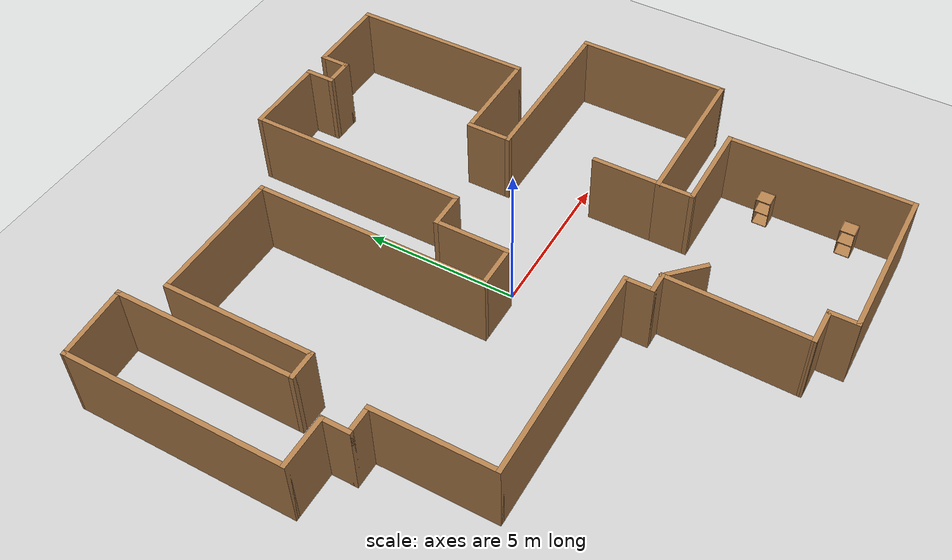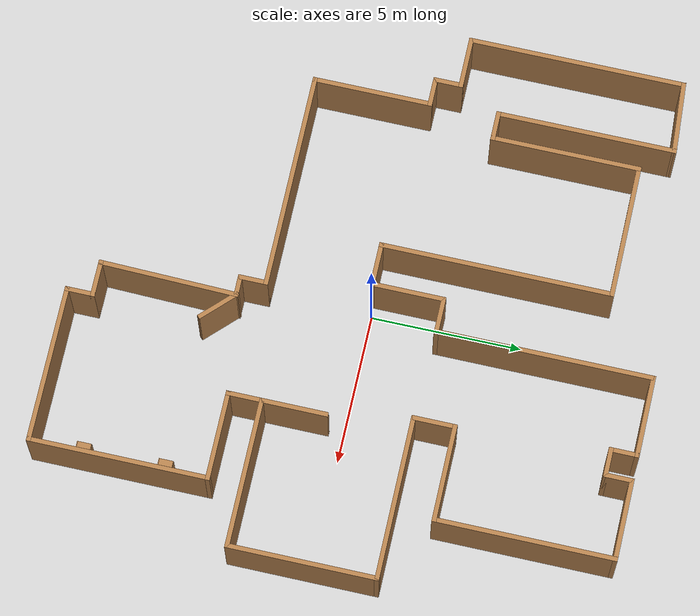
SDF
<sdf version="1.6">
 <world name="default">
  <model name="ground_plane">
   <static>1</static>
   <link name="link">
    <collision name="collision">
     <geometry><plane><normal>0 0 1</normal><size>100 100</size></plane></geometry>
     <surface>
      <contact><collide_bitmask>65535</collide_bitmask></contact>
      <friction><ode><mu>100</mu><mu2>50</mu2></ode></friction>
     </surface>
    </collision>
    <visual name="visual">
     <cast_shadows>0</cast_shadows>
     <geometry><plane><normal>0 0 1</normal><size>100 100</size></plane></geometry>
     <material>
      <script><uri>file://media/materials/scripts/gazebo.material</uri><name>Gazebo/Grey</name></script>
     </material>
    </visual>
   </link>
  </model>
  <model name="map_120">
   <pose>-0.132946 -0.11473 0 0 -0 0</pose>
   <link name="Wall_12">
    <collision name="Wall_12_Collision">
     <geometry><box><size>1.25 0.15 2.5</size></box></geometry>
     <pose>0 0 1.25 0 -0 0</pose>
    </collision>
    <visual name="Wall_12_Visual">
     <pose>0 0 1.25 0 -0 0</pose>
     <geometry><box><size>1.25 0.15 2.5</size></box></geometry>
     <material>
      <script><uri>file://media/materials/scripts/gazebo.material</uri><name>Gazebo/Wood</name></script>
      <ambient>1 1 1 1</ambient>
     </material>
     <meta><layer>0</layer></meta>
    </visual>
    <pose>1.47736 -8.65 0 0 -0 0</pose>
   </link>
   <link name="Wall_13">
    <collision name="Wall_13_Collision">
     <geometry><box><size>1 0.15 2.5</size></box></geometry>
     <pose>0 0 1.25 0 -0 0</pose>
    </collision>
    <visual name="Wall_13_Visual">
     <pose>0 0 1.25 0 -0 0</pose>
     <geometry><box><size>1 0.15 2.5</size></box></geometry>
     <material>
      <script><uri>file://media/materials/scripts/gazebo.material</uri><name>Gazebo/Wood</name></script>
      <ambient>1 1 1 1</ambient>
     </material>
     <meta><layer>0</layer></meta>
    </visual>
    <pose>2.02736 -9.075 0 0 -0 -1.5708</pose>
   </link>
   <link name="Wall_14">
    <collision name="Wall_14_Collision">
     <geometry><box><size>5.25 0.15 2.5</size></box></geometry>
     <pose>0 0 1.25 0 -0 0</pose>
    </collision>
    <visual name="Wall_14_Visual">
     <pose>0 0 1.25 0 -0 0</pose>
     <geometry><box><size>5.25 0.15 2.5</size></box></geometry>
     <material>
      <script><uri>file://media/materials/scripts/gazebo.material</uri><name>Gazebo/Wood</name></script>
      <ambient>1 1 1 1</ambient>
     </material>
     <meta><layer>0</layer></meta>
    </visual>
    <pose>4.57736 -9.5 0 0 -0 0</pose>
   </link>
   <link name="Wall_15">
    <collision name="Wall_15_Collision">
     <geometry><box><size>6 0.15 2.5</size></box></geometry>
     <pose>0 0 1.25 0 -0 0</pose>
    </collision>
    <visual name="Wall_15_Visual">
     <pose>0 0 1.25 0 -0 0</pose>
     <geometry><box><size>6 0.15 2.5</size></box></geometry>
     <material>
      <script><uri>file://media/materials/scripts/gazebo.material</uri><name>Gazebo/Wood</name></script>
      <ambient>1 1 1 1</ambient>
     </material>
     <meta><layer>0</layer></meta>
    </visual>
    <pose>7.12736 -6.575 0 0 -0 1.5708</pose>
   </link>
   <link name="Wall_16">
    <collision name="Wall_16_Collision">
     <geometry><box><size>3 0.15 2.5</size></box></geometry>
     <pose>0 0 1.25 0 -0 0</pose>
    </collision>
    <visual name="Wall_16_Visual">
     <pose>0 0 1.25 0 -0 0</pose>
     <geometry><box><size>3 0.15 2.5</size></box></geometry>
     <material>
      <script><uri>file://media/materials/scripts/gazebo.material</uri><name>Gazebo/Wood</name></script>
      <ambient>1 1 1 1</ambient>
     </material>
     <meta><layer>0</layer></meta>
    </visual>
    <pose>5.70236 -3.65 0 0 -0 3.14159</pose>
   </link>
   <link name="Wall_17">
    <collision name="Wall_17_Collision">
     <geometry><box><size>1.25 0.15 2.5</size></box></geometry>
     <pose>0 0 1.25 0 -0 0</pose>
    </collision>
    <visual name="Wall_17_Visual">
     <pose>0 0 1.25 0 -0 0</pose>
     <geometry><box><size>1.25 0.15 2.5</size></box></geometry>
     <material>
      <script><uri>file://media/materials/scripts/gazebo.material</uri><name>Gazebo/Wood</name></script>
      <ambient>1 1 1 1</ambient>
     </material>
     <meta><layer>0</layer></meta>
    </visual>
    <pose>4.27736 -3.1 0 0 -0 1.5708</pose>
   </link>
   <link name="Wall_18">
    <collision name="Wall_18_Collision">
     <geometry><box><size>5 0.15 2.5</size></box></geometry>
     <pose>0 0 1.25 0 -0 0</pose>
    </collision>
    <visual name="Wall_18_Visual">
     <pose>0 0 1.25 0 -0 0</pose>
     <geometry><box><size>5 0.15 2.5</size></box></geometry>
     <material>
      <script><uri>file://media/materials/scripts/gazebo.material</uri><name>Gazebo/Wood</name></script>
      <ambient>1 1 1 1</ambient>
     </material>
     <meta><layer>0</layer></meta>
    </visual>
    <pose>6.70236 -2.55 0 0 -0 0</pose>
   </link>
   <link name="Wall_19">
    <collision name="Wall_19_Collision">
     <geometry><box><size>5 0.15 2.5</size></box></geometry>
     <pose>0 0 1.25 0 -0 0</pose>
    </collision>
    <visual name="Wall_19_Visual">
     <pose>0 0 1.25 0 -0 0</pose>
     <geometry><box><size>5 0.15 2.5</size></box></geometry>
     <material>
      <script><uri>file://media/materials/scripts/gazebo.material</uri><name>Gazebo/Wood</name></script>
      <ambient>1 1 1 1</ambient>
     </material>
     <meta><layer>0</layer></meta>
    </visual>
    <pose>9.12736 -0.125 0 0 -0 1.5708</pose>
   </link>
   <link name="Wall_20">
    <collision name="Wall_20_Collision">
     <geometry><box><size>5.5 0.15 2.5</size></box></geometry>
     <pose>0 0 1.25 0 -0 0</pose>
    </collision>
    <visual name="Wall_20_Visual">
     <pose>0 0 1.25 0 -0 0</pose>
     <geometry><box><size>5.5 0.15 2.5</size></box></geometry>
     <material>
      <script><uri>file://media/materials/scripts/gazebo.material</uri><name>Gazebo/Wood</name></script>
      <ambient>1 1 1 1</ambient>
     </material>
     <meta><layer>0</layer></meta>
    </visual>
    <pose>6.45236 2.3 0 0 -0 3.14159</pose>
   </link>
   <link name="Wall_21">
    <collision name="Wall_21_Collision">
     <geometry><box><size>1.5 0.15 2.5</size></box></geometry>
     <pose>0 0 1.25 0 -0 0</pose>
    </collision>
    <visual name="Wall_21_Visual">
     <pose>0 0 1.25 0 -0 0</pose>
     <geometry><box><size>1.5 0.15 2.5</size></box></geometry>
     <material>
      <script><uri>file://media/materials/scripts/gazebo.material</uri><name>Gazebo/Wood</name></script>
      <ambient>1 1 1 1</ambient>
     </material>
     <meta><layer>0</layer></meta>
    </visual>
    <pose>3.77736 2.975 0 0 -0 1.5708</pose>
   </link>
   <link name="Wall_22">
    <collision name="Wall_22_Collision">
     <geometry><box><size>3.25 0.15 2.5</size></box></geometry>
     <pose>0 0 1.25 0 -0 0</pose>
    </collision>
    <visual name="Wall_22_Visual">
     <pose>0 0 1.25 0 -0 0</pose>
     <geometry><box><size>3.25 0.15 2.5</size></box></geometry>
     <material>
      <script><uri>file://media/materials/scripts/gazebo.material</uri><name>Gazebo/Wood</name></script>
      <ambient>1 1 1 1</ambient>
     </material>
     <meta><layer>0</layer></meta>
    </visual>
    <pose>5.32736 3.65 0 0 -0 0</pose>
   </link>
   <link name="Wall_23">
    <collision name="Wall_23_Collision">
     <geometry><box><size>6 0.15 2.5</size></box></geometry>
     <pose>0 0 1.25 0 -0 0</pose>
    </collision>
    <visual name="Wall_23_Visual">
     <pose>0 0 1.25 0 -0 0</pose>
     <geometry><box><size>6 0.15 2.5</size></box></geometry>
     <material>
      <script><uri>file://media/materials/scripts/gazebo.material</uri><name>Gazebo/Wood</name></script>
      <ambient>1 1 1 1</ambient>
     </material>
     <meta><layer>0</layer></meta>
    </visual>
    <pose>6.87736 6.575 0 0 -0 1.5708</pose>
   </link>
   <link name="Wall_24">
    <collision name="Wall_24_Collision">
     <geometry><box><size>2.75 0.15 2.5</size></box></geometry>
     <pose>0 0 1.25 0 -0 0</pose>
    </collision>
    <visual name="Wall_24_Visual">
     <pose>0 0 1.25 0 -0 0</pose>
     <geometry><box><size>2.75 0.15 2.5</size></box></geometry>
     <material>
      <script><uri>file://media/materials/scripts/gazebo.material</uri><name>Gazebo/Wood</name></script>
      <ambient>1 1 1 1</ambient>
     </material>
     <meta><layer>0</layer></meta>
    </visual>
    <pose>5.57736 9.5 0 0 -0 3.14159</pose>
   </link>
   <link name="Wall_25">
    <collision name="Wall_25_Collision">
     <geometry><box><size>1 0.15 2.5</size></box></geometry>
     <pose>0 0 1.25 0 -0 0</pose>
    </collision>
    <visual name="Wall_25_Visual">
     <pose>0 0 1.25 0 -0 0</pose>
     <geometry><box><size>1 0.15 2.5</size></box></geometry>
     <material>
      <script><uri>file://media/materials/scripts/gazebo.material</uri><name>Gazebo/Wood</name></script>
      <ambient>1 1 1 1</ambient>
     </material>
     <meta><layer>0</layer></meta>
    </visual>
    <pose>4.27736 9.075 0 0 -0 -1.5708</pose>
   </link>
   <link name="Wall_26">
    <collision name="Wall_26_Collision">
     <geometry><box><size>1 0.15 2.5</size></box></geometry>
     <pose>0 0 1.25 0 -0 0</pose>
    </collision>
    <visual name="Wall_26_Visual">
     <pose>0 0 1.25 0 -0 0</pose>
     <geometry><box><size>1 0.15 2.5</size></box></geometry>
     <material>
      <script><uri>file://media/materials/scripts/gazebo.material</uri><name>Gazebo/Wood</name></script>
      <ambient>1 1 1 1</ambient>
     </material>
     <meta><layer>0</layer></meta>
    </visual>
    <pose>3.85236 8.65 0 0 -0 3.14159</pose>
   </link>
   <link name="Wall_27">
    <collision name="Wall_27_Collision">
     <geometry><box><size>1 0.15 2.5</size></box></geometry>
     <pose>0 0 1.25 0 -0 0</pose>
    </collision>
    <visual name="Wall_27_Visual">
     <pose>0 0 1.25 0 -0 0</pose>
     <geometry><box><size>1 0.15 2.5</size></box></geometry>
     <material>
      <script><uri>file://media/materials/scripts/gazebo.material</uri><name>Gazebo/Wood</name></script>
      <ambient>1 1 1 1</ambient>
     </material>
     <meta><layer>0</layer></meta>
    </visual>
    <pose>3.42736 9.075 0 0 -0 1.5708</pose>
   </link>
   <link name="Wall_28">
    <collision name="Wall_28_Collision">
     <geometry><box><size>2.75 0.15 2.5</size></box></geometry>
     <pose>0 0 1.25 0 -0 0</pose>
    </collision>
    <visual name="Wall_28_Visual">
     <pose>0 0 1.25 0 -0 0</pose>
     <geometry><box><size>2.75 0.15 2.5</size></box></geometry>
     <material>
      <script><uri>file://media/materials/scripts/gazebo.material</uri><name>Gazebo/Wood</name></script>
      <ambient>1 1 1 1</ambient>
     </material>
     <meta><layer>0</layer></meta>
    </visual>
    <pose>2.12736 9.5 0 0 -0 3.14159</pose>
   </link>
   <link name="Wall_29">
    <collision name="Wall_29_Collision">
     <geometry><box><size>7.25 0.15 2.5</size></box></geometry>
     <pose>0 0 1.25 0 -0 0</pose>
    </collision>
    <visual name="Wall_29_Visual">
     <pose>0 0 1.25 0 -0 0</pose>
     <geometry><box><size>7.25 0.15 2.5</size></box></geometry>
     <material>
      <script><uri>file://media/materials/scripts/gazebo.material</uri><name>Gazebo/Wood</name></script>
      <ambient>1 1 1 1</ambient>
     </material>
     <meta><layer>0</layer></meta>
    </visual>
    <pose>0.827361 5.95 0 0 -0 -1.5708</pose>
   </link>
   <link name="Wall_30">
    <collision name="Wall_30_Collision">
     <geometry><box><size>1.25 0.15 2.5</size></box></geometry>
     <pose>0 0 1.25 0 -0 0</pose>
    </collision>
    <visual name="Wall_30_Visual">
     <pose>0 0 1.25 0 -0 0</pose>
     <geometry><box><size>1.25 0.15 2.5</size></box></geometry>
     <material>
      <script><uri>file://media/materials/scripts/gazebo.material</uri><name>Gazebo/Wood</name></script>
      <ambient>1 1 1 1</ambient>
     </material>
     <meta><layer>0</layer></meta>
    </visual>
    <pose>0.277361 2.4 0 0 -0 3.14159</pose>
   </link>
   <link name="Wall_31">
    <collision name="Wall_31_Collision">
     <geometry><box><size>2.5 0.15 2.5</size></box></geometry>
     <pose>0 0 1.25 0 -0 0</pose>
    </collision>
    <visual name="Wall_31_Visual">
     <pose>0 0 1.25 0 -0 0</pose>
     <geometry><box><size>2.5 0.15 2.5</size></box></geometry>
     <material>
      <script><uri>file://media/materials/scripts/gazebo.material</uri><name>Gazebo/Wood</name></script>
      <ambient>1 1 1 1</ambient>
     </material>
     <meta><layer>0</layer></meta>
    </visual>
    <pose>-0.272639 1.225 0 0 -0 -1.5708</pose>
   </link>
   <link name="Wall_32">
    <collision name="Wall_32_Collision">
     <geometry><box><size>1.5 0.15 2.5</size></box></geometry>
     <pose>0 0 1.25 0 -0 0</pose>
    </collision>
    <visual name="Wall_32_Visual">
     <pose>0 0 1.25 0 -0 0</pose>
     <geometry><box><size>1.5 0.15 2.5</size></box></geometry>
     <material>
      <script><uri>file://media/materials/scripts/gazebo.material</uri><name>Gazebo/Wood</name></script>
      <ambient>1 1 1 1</ambient>
     </material>
     <meta><layer>0</layer></meta>
    </visual>
    <pose>-0.947639 0.05 0 0 -0 3.14159</pose>
   </link>
   <link name="Wall_36">
    <collision name="Wall_36_Collision">
     <geometry><box><size>1 0.15 2.5</size></box></geometry>
     <pose>0 0 1.25 0 -0 0</pose>
    </collision>
    <visual name="Wall_36_Visual">
     <pose>0 0 1.25 0 -0 0</pose>
     <geometry><box><size>1 0.15 2.5</size></box></geometry>
     <material>
      <script><uri>file://media/materials/scripts/gazebo.material</uri><name>Gazebo/Wood</name></script>
      <ambient>1 1 1 1</ambient>
     </material>
     <meta><layer>0</layer></meta>
    </visual>
    <pose>-6.39764 2.8 0 0 -0 3.14159</pose>
   </link>
   <link name="Wall_37">
    <collision name="Wall_37_Collision">
     <geometry><box><size>6 0.15 2.5</size></box></geometry>
     <pose>0 0 1.25 0 -0 0</pose>
    </collision>
    <visual name="Wall_37_Visual">
     <pose>0 0 1.25 0 -0 0</pose>
     <geometry><box><size>6 0.15 2.5</size></box></geometry>
     <material>
      <script><uri>file://media/materials/scripts/gazebo.material</uri><name>Gazebo/Wood</name></script>
      <ambient>1 1 1 1</ambient>
     </material>
     <meta><layer>0</layer></meta>
    </visual>
    <pose>-6.82264 5.725 0 0 -0 1.5708</pose>
   </link>
   <link name="Wall_40">
    <collision name="Wall_40_Collision">
     <geometry><box><size>2.45489 0.15 2.5</size></box></geometry>
     <pose>0 0 1.25 0 -0 0</pose>
    </collision>
    <visual name="Wall_40_Visual">
     <pose>0 0 1.25 0 -0 0</pose>
     <geometry><box><size>2.45489 0.15 2.5</size></box></geometry>
     <material>
      <script><uri>file://media/materials/scripts/gazebo.material</uri><name>Gazebo/Wood</name></script>
      <ambient>1 1 1 1</ambient>
     </material>
     <meta><layer>0</layer></meta>
    </visual>
    <pose>-7.97264 8.575 0 0 -0 -3.07647</pose>
   </link>
   <link name="Wall_42">
    <collision name="Wall_42_Collision">
     <geometry><box><size>2.25 0.15 2.5</size></box></geometry>
     <pose>0 0 1.25 0 -0 0</pose>
    </collision>
    <visual name="Wall_42_Visual">
     <pose>0 0 1.25 0 -0 0</pose>
     <geometry><box><size>2.25 0.15 2.5</size></box></geometry>
     <material>
      <script><uri>file://media/materials/scripts/gazebo.material</uri><name>Gazebo/Wood</name></script>
      <ambient>1 1 1 1</ambient>
     </material>
     <meta><layer>0</layer></meta>
    </visual>
    <pose>4.27736 -1.5 0 0 -0 1.5708</pose>
   </link>
   <link name="Wall_44">
    <collision name="Wall_44_Collision">
     <geometry><box><size>7.25 0.15 2.5</size></box></geometry>
     <pose>0 0 1.25 0 -0 0</pose>
    </collision>
    <visual name="Wall_44_Visual">
     <pose>0 0 1.25 0 -0 0</pose>
     <geometry><box><size>7.25 0.15 2.5</size></box></geometry>
     <material>
      <script><uri>file://media/materials/scripts/gazebo.material</uri><name>Gazebo/Wood</name></script>
      <ambient>1 1 1 1</ambient>
     </material>
     <meta><layer>0</layer></meta>
    </visual>
    <pose>-3.12264 -3.3 0 0 -0 0</pose>
   </link>
   <link name="Wall_45">
    <collision name="Wall_45_Collision">
     <geometry><box><size>1 0.15 2.5</size></box></geometry>
     <pose>0 0 1.25 0 -0 0</pose>
    </collision>
    <visual name="Wall_45_Visual">
     <pose>0 0 1.25 0 -0 0</pose>
     <geometry><box><size>1 0.15 2.5</size></box></geometry>
     <material>
      <script><uri>file://media/materials/scripts/gazebo.material</uri><name>Gazebo/Wood</name></script>
      <ambient>1 1 1 1</ambient>
     </material>
     <meta><layer>0</layer></meta>
    </visual>
    <pose>0.427361 -3.725 0 0 -0 -1.5708</pose>
   </link>
   <link name="Wall_46">
    <collision name="Wall_46_Collision">
     <geometry><box><size>0.75 0.15 2.5</size></box></geometry>
     <pose>0 0 1.25 0 -0 0</pose>
    </collision>
    <visual name="Wall_46_Visual">
     <pose>0 0 1.25 0 -0 0</pose>
     <geometry><box><size>0.75 0.15 2.5</size></box></geometry>
     <material>
      <script><uri>file://media/materials/scripts/gazebo.material</uri><name>Gazebo/Wood</name></script>
      <ambient>1 1 1 1</ambient>
     </material>
     <meta><layer>0</layer></meta>
    </visual>
    <pose>0.727361 -4.15 0 0 -0 0</pose>
   </link>
   <link name="Wall_47">
    <collision name="Wall_47_Collision">
     <geometry><box><size>4.65111 0.15 2.5</size></box></geometry>
     <pose>0 0 1.25 0 -0 0</pose>
    </collision>
    <visual name="Wall_47_Visual">
     <pose>0 0 1.25 0 -0 0</pose>
     <geometry><box><size>4.65111 0.15 2.5</size></box></geometry>
     <material>
      <script><uri>file://media/materials/scripts/gazebo.material</uri><name>Gazebo/Wood</name></script>
      <ambient>1 1 1 1</ambient>
     </material>
     <meta><layer>0</layer></meta>
    </visual>
    <pose>0.977361 -6.4 0 0 -0 -1.59302</pose>
   </link>
   <link name="Wall_49">
    <collision name="Wall_49_Collision">
     <geometry><box><size>1.5 0.15 2.5</size></box></geometry>
     <pose>0 0 1.25 0 -0 0</pose>
    </collision>
    <visual name="Wall_49_Visual">
     <pose>0 0 1.25 0 -0 0</pose>
     <geometry><box><size>1.5 0.15 2.5</size></box></geometry>
     <material>
      <script><uri>file://media/materials/scripts/gazebo.material</uri><name>Gazebo/Wood</name></script>
      <ambient>1 1 1 1</ambient>
     </material>
     <meta><layer>0</layer></meta>
    </visual>
    <pose>1.50466 -4.6273 0 0 -0 -0.785398</pose>
   </link>
   <link name="Wall_5">
    <collision name="Wall_5_Collision">
     <geometry><box><size>7.25 0.15 2.5</size></box></geometry>
     <pose>0 0 1.25 0 -0 0</pose>
    </collision>
    <visual name="Wall_5_Visual">
     <pose>0 0 1.25 0 -0 0</pose>
     <geometry><box><size>7.25 0.15 2.5</size></box></geometry>
     <material>
      <script><uri>file://media/materials/scripts/gazebo.material</uri><name>Gazebo/Wood</name></script>
      <ambient>1 1 1 1</ambient>
     </material>
     <meta><layer>0</layer></meta>
    </visual>
    <pose>-9.12264 4.95 0 0 -0 -1.5708</pose>
   </link>
   <link name="Wall_51">
    <collision name="Wall_51_Collision">
     <geometry><box><size>5 0.15 2.5</size></box></geometry>
     <pose>0 0 1.25 0 -0 0</pose>
    </collision>
    <visual name="Wall_51_Visual">
     <pose>0 0 1.25 0 -0 0</pose>
     <geometry><box><size>5 0.15 2.5</size></box></geometry>
     <material>
      <script><uri>file://media/materials/scripts/gazebo.material</uri><name>Gazebo/Wood</name></script>
      <ambient>1 1 1 1</ambient>
     </material>
     <meta><layer>0</layer></meta>
    </visual>
    <pose>-5.97264 5.225 0 0 -0 1.5708</pose>
   </link>
   <link name="Wall_52">
    <collision name="Wall_52_Collision">
     <geometry><box><size>4.5 0.15 2.5</size></box></geometry>
     <pose>0 0 1.25 0 -0 0</pose>
    </collision>
    <visual name="Wall_52_Visual">
     <pose>0 0 1.25 0 -0 0</pose>
     <geometry><box><size>4.5 0.15 2.5</size></box></geometry>
     <material>
      <script><uri>file://media/materials/scripts/gazebo.material</uri><name>Gazebo/Wood</name></script>
      <ambient>1 1 1 1</ambient>
     </material>
     <meta><layer>0</layer></meta>
    </visual>
    <pose>-3.79764 7.65 0 0 -0 0</pose>
   </link>
   <link name="Wall_53">
    <collision name="Wall_53_Collision">
     <geometry><box><size>7.75 0.15 2.5</size></box></geometry>
     <pose>0 0 1.25 0 -0 0</pose>
    </collision>
    <visual name="Wall_53_Visual">
     <pose>0 0 1.25 0 -0 0</pose>
     <geometry><box><size>7.75 0.15 2.5</size></box></geometry>
     <material>
      <script><uri>file://media/materials/scripts/gazebo.material</uri><name>Gazebo/Wood</name></script>
      <ambient>1 1 1 1</ambient>
     </material>
     <meta><layer>0</layer></meta>
    </visual>
    <pose>-1.62264 3.85 0 0 -0 -1.5708</pose>
   </link>
   <link name="Wall_6">
    <collision name="Wall_6_Collision">
     <geometry><box><size>1.75 0.15 2.5</size></box></geometry>
     <pose>0 0 1.25 0 -0 0</pose>
    </collision>
    <visual name="Wall_6_Visual">
     <pose>0 0 1.25 0 -0 0</pose>
     <geometry><box><size>1.75 0.15 2.5</size></box></geometry>
     <material>
      <script><uri>file://media/materials/scripts/gazebo.material</uri><name>Gazebo/Wood</name></script>
      <ambient>1 1 1 1</ambient>
     </material>
     <meta><layer>0</layer></meta>
    </visual>
    <pose>-8.32264 1.4 0 0 -0 0</pose>
   </link>
   <link name="Wall_7">
    <collision name="Wall_7_Collision">
     <geometry><box><size>1 0.15 2.5</size></box></geometry>
     <pose>0 0 1.25 0 -0 0</pose>
    </collision>
    <visual name="Wall_7_Visual">
     <pose>0 0 1.25 0 -0 0</pose>
     <geometry><box><size>1 0.15 2.5</size></box></geometry>
     <material>
      <script><uri>file://media/materials/scripts/gazebo.material</uri><name>Gazebo/Wood</name></script>
      <ambient>1 1 1 1</ambient>
     </material>
     <meta><layer>0</layer></meta>
    </visual>
    <pose>-7.52264 0.975 0 0 -0 -1.5708</pose>
   </link>
   <link name="Wall_8">
    <collision name="Wall_8_Collision">
     <geometry><box><size>1 0.15 2.5</size></box></geometry>
     <pose>0 0 1.25 0 -0 0</pose>
    </collision>
    <visual name="Wall_8_Visual">
     <pose>0 0 1.25 0 -0 0</pose>
     <geometry><box><size>1 0.15 2.5</size></box></geometry>
     <material>
      <script><uri>file://media/materials/scripts/gazebo.material</uri><name>Gazebo/Wood</name></script>
      <ambient>1 1 1 1</ambient>
     </material>
     <meta><layer>0</layer></meta>
    </visual>
    <pose>-7.09764 0.55 0 0 -0 0</pose>
   </link>
   <link name="Wall_9">
    <collision name="Wall_9_Collision">
     <geometry><box><size>4 0.15 2.5</size></box></geometry>
     <pose>0 0 1.25 0 -0 0</pose>
    </collision>
    <visual name="Wall_9_Visual">
     <pose>0 0 1.25 0 -0 0</pose>
     <geometry><box><size>4 0.15 2.5</size></box></geometry>
     <material>
      <script><uri>file://media/materials/scripts/gazebo.material</uri><name>Gazebo/Wood</name></script>
      <ambient>1 1 1 1</ambient>
     </material>
     <meta><layer>0</layer></meta>
    </visual>
    <pose>-6.67264 -1.375 0 0 -0 -1.5708</pose>
   </link>
   <static>1</static>
  </model>
  <model name="cabinet">
   <static>1</static>
   <link name="cabinet_bottom_plate">
    <inertial>
     <pose>0 0 -1 0 -0 0</pose>
     <inertia><ixx>2.05</ixx><ixy>0</ixy><ixz>0</ixz><iyy>2.05</iyy><iyz>0</iyz><izz>2.05</izz></inertia>
     <mass>25</mass>
    </inertial>
    <collision name="cabinet_bottom_plate_geom">
     <pose>0 0 0.01 0 -0 0</pose>
     <geometry><box><size>0.45 0.45 0.02</size></box></geometry>
    </collision>
    <visual name="cabinet_bottom_plate_geom_visual">
     <pose>0 0 0.01 0 -0 0</pose>
     <geometry><box><size>0.45 0.45 0.02</size></box></geometry>
     <material>
      <script><uri>file://media/materials/scripts/gazebo.material</uri><name>Gazebo/Wood</name></script>
     </material>
    </visual>
    <collision name="cabinet_bottom_plate_geom_cabinet_back_plate">
     <pose>0.235 0 0.51 0 -0 0</pose>
     <geometry><box><size>0.02 0.45 1.02</size></box></geometry>
    </collision>
    <visual name="cabinet_bottom_plate_geom_cabinet_back_plate_visual">
     <pose>0.235 0 0.51 0 -0 0</pose>
     <geometry><box><size>0.02 0.45 1.02</size></box></geometry>
     <material>
      <script><uri>file://media/materials/scripts/gazebo.material</uri><name>Gazebo/Wood</name></script>
     </material>
    </visual>
    <collision name="cabinet_bottom_plate_geom_cabinet_left_plate">
     <pose>0 0.235 0.51 0 -0 0</pose>
     <geometry><box><size>0.45 0.02 1.02</size></box></geometry>
    </collision>
    <visual name="cabinet_bottom_plate_geom_cabinet_left_plate_visual">
     <pose>0 0.235 0.51 0 -0 0</pose>
     <geometry><box><size>0.45 0.02 1.02</size></box></geometry>
     <material>
      <script><uri>file://media/materials/scripts/gazebo.material</uri><name>Gazebo/Wood</name></script>
     </material>
    </visual>
    <collision name="cabinet_bottom_plate_geom_cabinet_middle_plate">
     <pose>0 0 0.51 0 -0 0</pose>
     <geometry><box><size>0.45 0.45 0.02</size></box></geometry>
    </collision>
    <visual name="cabinet_bottom_plate_geom_cabinet_middle_plate_visual">
     <pose>0 0 0.51 0 -0 0</pose>
     <geometry><box><size>0.45 0.45 0.02</size></box></geometry>
     <material>
      <script><uri>file://media/materials/scripts/gazebo.material</uri><name>Gazebo/Wood</name></script>
     </material>
    </visual>
    <collision name="cabinet_bottom_plate_geom_cabinet_right_plate">
     <pose>0 -0.235 0.51 0 -0 0</pose>
     <geometry><box><size>0.45 0.02 1.02</size></box></geometry>
    </collision>
    <visual name="cabinet_bottom_plate_geom_cabinet_right_plate_visual">
     <pose>0 -0.235 0.51 0 -0 0</pose>
     <geometry><box><size>0.45 0.02 1.02</size></box></geometry>
     <material>
      <script><uri>file://media/materials/scripts/gazebo.material</uri><name>Gazebo/Wood</name></script>
     </material>
    </visual>
    <collision name="cabinet_bottom_plate_geom_cabinet_top_plate">
     <pose>0 0 1.01 0 -0 0</pose>
     <geometry><box><size>0.45 0.45 0.02</size></box></geometry>
    </collision>
    <visual name="cabinet_bottom_plate_geom_cabinet_top_plate_visual">
     <pose>0 0 1.01 0 -0 0</pose>
     <geometry><box><size>0.45 0.45 0.02</size></box></geometry>
     <material>
      <script><uri>file://media/materials/scripts/gazebo.material</uri><name>Gazebo/Wood</name></script>
     </material>
    </visual>
   </link>
   <pose>6.61152 -8.0367 0 0 -0 0</pose>
  </model>
  <model name="cabinet_0">
   <static>1</static>
   <link name="cabinet_bottom_plate">
    <inertial>
     <pose>0 0 -1 0 -0 0</pose>
     <inertia><ixx>2.05</ixx><ixy>0</ixy><ixz>0</ixz><iyy>2.05</iyy><iyz>0</iyz><izz>2.05</izz></inertia>
     <mass>25</mass>
    </inertial>
    <collision name="cabinet_bottom_plate_geom">
     <pose>0 0 0.01 0 -0 0</pose>
     <geometry><box><size>0.45 0.45 0.02</size></box></geometry>
    </collision>
    <visual name="cabinet_bottom_plate_geom_visual">
     <pose>0 0 0.01 0 -0 0</pose>
     <geometry><box><size>0.45 0.45 0.02</size></box></geometry>
     <material>
      <script><uri>file://media/materials/scripts/gazebo.material</uri><name>Gazebo/Wood</name></script>
     </material>
    </visual>
    <collision name="cabinet_bottom_plate_geom_cabinet_back_plate">
     <pose>0.235 0 0.51 0 -0 0</pose>
     <geometry><box><size>0.02 0.45 1.02</size></box></geometry>
    </collision>
    <visual name="cabinet_bottom_plate_geom_cabinet_back_plate_visual">
     <pose>0.235 0 0.51 0 -0 0</pose>
     <geometry><box><size>0.02 0.45 1.02</size></box></geometry>
     <material>
      <script><uri>file://media/materials/scripts/gazebo.material</uri><name>Gazebo/Wood</name></script>
     </material>
    </visual>
    <collision name="cabinet_bottom_plate_geom_cabinet_left_plate">
     <pose>0 0.235 0.51 0 -0 0</pose>
     <geometry><box><size>0.45 0.02 1.02</size></box></geometry>
    </collision>
    <visual name="cabinet_bottom_plate_geom_cabinet_left_plate_visual">
     <pose>0 0.235 0.51 0 -0 0</pose>
     <geometry><box><size>0.45 0.02 1.02</size></box></geometry>
     <material>
      <script><uri>file://media/materials/scripts/gazebo.material</uri><name>Gazebo/Wood</name></script>
     </material>
    </visual>
    <collision name="cabinet_bottom_plate_geom_cabinet_middle_plate">
     <pose>0 0 0.51 0 -0 0</pose>
     <geometry><box><size>0.45 0.45 0.02</size></box></geometry>
    </collision>
    <visual name="cabinet_bottom_plate_geom_cabinet_middle_plate_visual">
     <pose>0 0 0.51 0 -0 0</pose>
     <geometry><box><size>0.45 0.45 0.02</size></box></geometry>
     <material>
      <script><uri>file://media/materials/scripts/gazebo.material</uri><name>Gazebo/Wood</name></script>
     </material>
    </visual>
    <collision name="cabinet_bottom_plate_geom_cabinet_right_plate">
     <pose>0 -0.235 0.51 0 -0 0</pose>
     <geometry><box><size>0.45 0.02 1.02</size></box></geometry>
    </collision>
    <visual name="cabinet_bottom_plate_geom_cabinet_right_plate_visual">
     <pose>0 -0.235 0.51 0 -0 0</pose>
     <geometry><box><size>0.45 0.02 1.02</size></box></geometry>
     <material>
      <script><uri>file://media/materials/scripts/gazebo.material</uri><name>Gazebo/Wood</name></script>
     </material>
    </visual>
    <collision name="cabinet_bottom_plate_geom_cabinet_top_plate">
     <pose>0 0 1.01 0 -0 0</pose>
     <geometry><box><size>0.45 0.45 0.02</size></box></geometry>
    </collision>
    <visual name="cabinet_bottom_plate_geom_cabinet_top_plate_visual">
     <pose>0 0 1.01 0 -0 0</pose>
     <geometry><box><size>0.45 0.45 0.02</size></box></geometry>
     <material>
      <script><uri>file://media/materials/scripts/gazebo.material</uri><name>Gazebo/Wood</name></script>
     </material>
    </visual>
   </link>
   <pose>6.5909 -5.3351 0 0 -0 0</pose>
  </model>
 </world>
</sdf>
